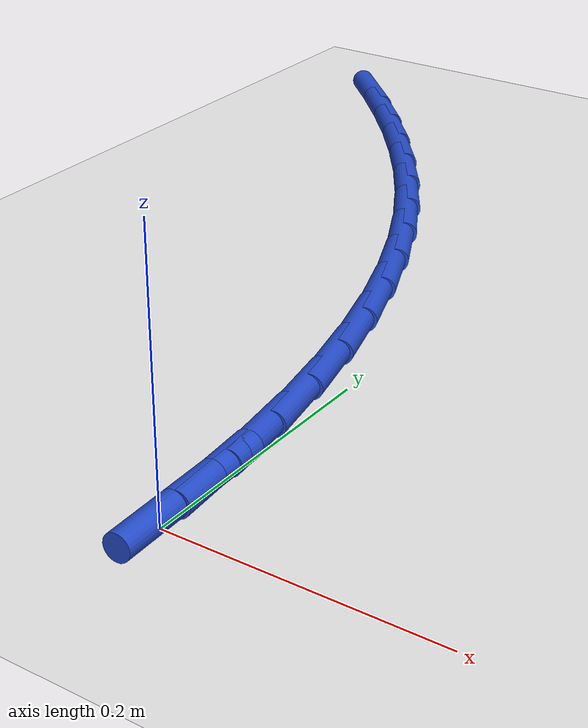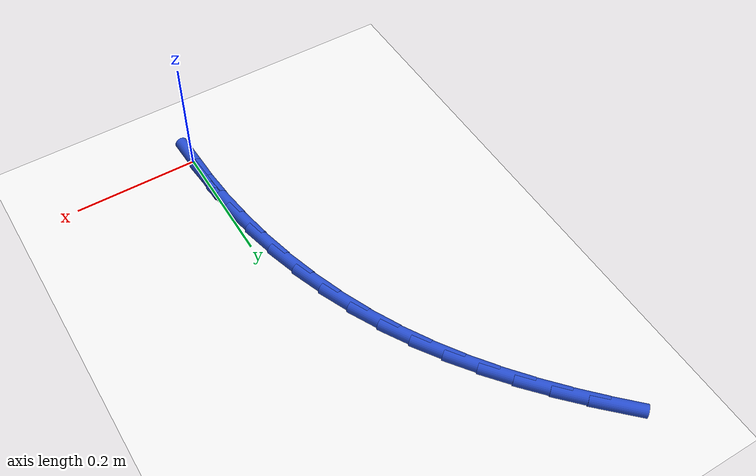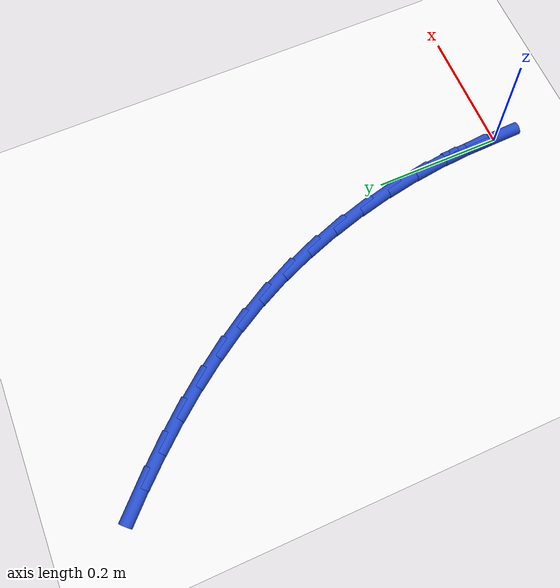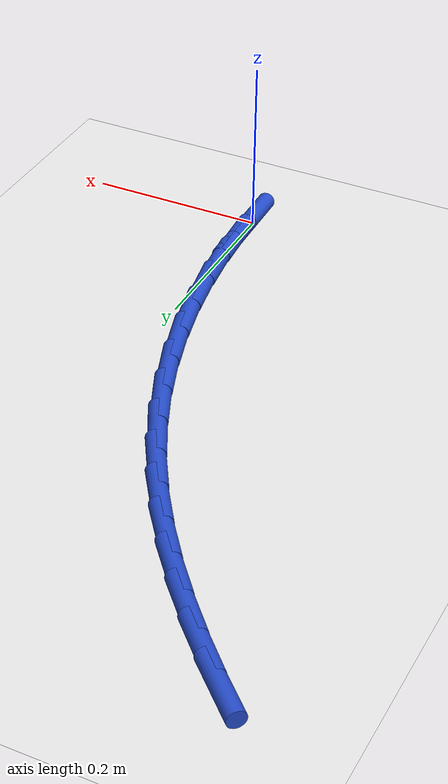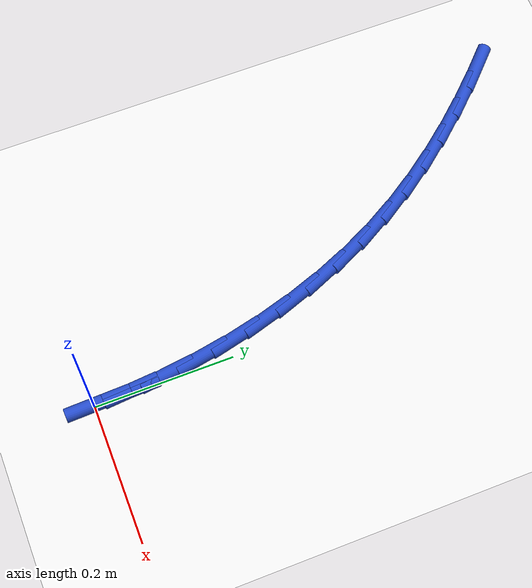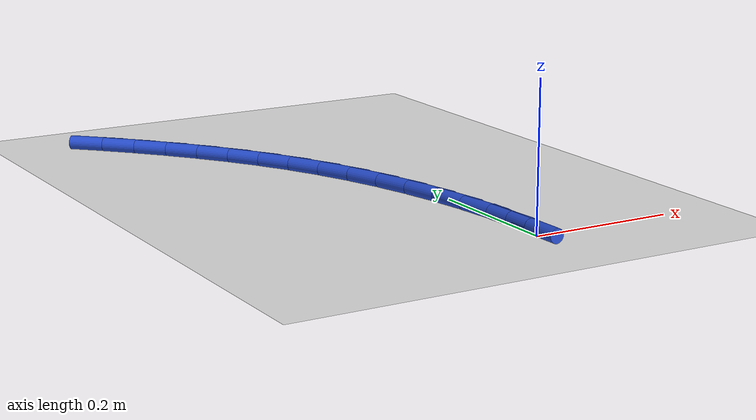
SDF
<sdf version="1.6">
 <world name="default">
  <model name="ground_plane">
   <static>1</static>
   <link name="link">
    <collision name="collision">
     <geometry><plane><normal>0 0 1</normal><size>100 100</size></plane></geometry>
     <surface><friction><ode><mu>100</mu><mu2>50</mu2></ode></friction></surface>
    </collision>
    <visual name="visual">
     <cast_shadows>0</cast_shadows>
     <geometry><plane><normal>0 0 1</normal><size>100 100</size></plane></geometry>
     <material>
      <script><uri>file://media/materials/scripts/gazebo.material</uri><name>Gazebo/WhiteGlow</name></script>
     </material>
    </visual>
   </link>
  </model>
  <model name="line">
   <link name="link_1">
    <pose>-0.0015022339804778787 0.053447836536004205 0.01 0 1.57 -1.4918860255658026</pose>
    <collision name="collision">
     <geometry><cylinder><radius>0.01</radius><length>0.08</length></cylinder></geometry>
    </collision>
    <visual name="visual">
     <material>
      <script><name>Gazebo/Blue</name><uri>file://media/materials/scripts/gazebo.material</uri></script>
     </material>
     <geometry><cylinder><radius>0.01</radius><length>0.08</length></cylinder></geometry>
    </visual>
   </link>
   <link name="link_2">
    <pose>-0.005718462823511615 0.10676754116044428 0.01 0 1.57 -1.4407691615304024</pose>
    <collision name="collision">
     <geometry><cylinder><radius>0.01</radius><length>0.08</length></cylinder></geometry>
    </collision>
    <visual name="visual">
     <material>
      <script><name>Gazebo/Blue</name><uri>file://media/materials/scripts/gazebo.material</uri></script>
     </material>
     <geometry><cylinder><radius>0.01</radius><length>0.08</length></cylinder></geometry>
    </visual>
   </link>
   <link name="link_3">
    <pose>-0.012642421567694281 0.1597171952297842 0.01 0 1.57 -1.3889186938753042</pose>
    <collision name="collision">
     <geometry><cylinder><radius>0.01</radius><length>0.08</length></cylinder></geometry>
    </collision>
    <visual name="visual">
     <material>
      <script><name>Gazebo/Blue</name><uri>file://media/materials/scripts/gazebo.material</uri></script>
     </material>
     <geometry><cylinder><radius>0.01</radius><length>0.08</length></cylinder></geometry>
    </visual>
   </link>
   <link name="link_4">
    <pose>-0.02226784525161897 0.21205488010048779 0.01 0 1.57 -1.335903203767169</pose>
    <collision name="collision">
     <geometry><cylinder><radius>0.01</radius><length>0.08</length></cylinder></geometry>
    </collision>
    <visual name="visual">
     <material>
      <script><name>Gazebo/Blue</name><uri>file://media/materials/scripts/gazebo.material</uri></script>
     </material>
     <geometry><cylinder><radius>0.01</radius><length>0.08</length></cylinder></geometry>
    </visual>
   </link>
   <link name="link_5">
    <pose>-0.03458846891387879 0.2635386771290194 0.01 0 1.57 -1.2812859101356902</pose>
    <collision name="collision">
     <geometry><cylinder><radius>0.01</radius><length>0.08</length></cylinder></geometry>
    </collision>
    <visual name="visual">
     <material>
      <script><name>Gazebo/Blue</name><uri>file://media/materials/scripts/gazebo.material</uri></script>
     </material>
     <geometry><cylinder><radius>0.01</radius><length>0.08</length></cylinder></geometry>
    </visual>
   </link>
   <link name="link_6">
    <pose>-0.049598027593066835 0.3139266676718427 0.01 0 1.57 -1.2246248402349118</pose>
    <collision name="collision">
     <geometry><cylinder><radius>0.01</radius><length>0.08</length></cylinder></geometry>
    </collision>
    <visual name="visual">
     <material>
      <script><name>Gazebo/Blue</name><uri>file://media/materials/scripts/gazebo.material</uri></script>
     </material>
     <geometry><cylinder><radius>0.01</radius><length>0.08</length></cylinder></geometry>
    </visual>
   </link>
   <link name="link_7">
    <pose>-0.06729025632777619 0.36297693308542167 0.01 0 1.57 -1.1654760408640223</pose>
    <collision name="collision">
     <geometry><cylinder><radius>0.01</radius><length>0.08</length></cylinder></geometry>
    </collision>
    <visual name="visual">
     <material>
      <script><name>Gazebo/Blue</name><uri>file://media/materials/scripts/gazebo.material</uri></script>
     </material>
     <geometry><cylinder><radius>0.01</radius><length>0.08</length></cylinder></geometry>
    </visual>
   </link>
   <link name="link_8">
    <pose>-0.08765889015659996 0.4104475547262205 0.01 0 1.57 -1.1035345253752182</pose>
    <collision name="collision">
     <geometry><cylinder><radius>0.01</radius><length>0.08</length></cylinder></geometry>
    </collision>
    <visual name="visual">
     <material>
      <script><name>Gazebo/Blue</name><uri>file://media/materials/scripts/gazebo.material</uri></script>
     </material>
     <geometry><cylinder><radius>0.01</radius><length>0.08</length></cylinder></geometry>
    </visual>
   </link>
   <link name="link_9">
    <pose>-0.11069406333752672 0.45610461890982995 0.01 0 1.57 -1.0417806762022839</pose>
    <collision name="collision">
     <geometry><cylinder><radius>0.01</radius><length>0.08</length></cylinder></geometry>
    </collision>
    <visual name="visual">
     <material>
      <script><name>Gazebo/Blue</name><uri>file://media/materials/scripts/gazebo.material</uri></script>
     </material>
     <geometry><cylinder><radius>0.01</radius><length>0.08</length></cylinder></geometry>
    </visual>
   </link>
   <link name="link_10">
    <pose>-0.13629986348260908 0.49990550377418974 0.01 0 1.57 -0.9839841862624333</pose>
    <collision name="collision">
     <geometry><cylinder><radius>0.01</radius><length>0.08</length></cylinder></geometry>
    </collision>
    <visual name="visual">
     <material>
      <script><name>Gazebo/Blue</name><uri>file://media/materials/scripts/gazebo.material</uri></script>
     </material>
     <geometry><cylinder><radius>0.01</radius><length>0.08</length></cylinder></geometry>
    </visual>
   </link>
   <link name="link_11">
    <pose>-0.16429249867418458 0.542002953995977 0.01 0 1.57 -0.930854958626746</pose>
    <collision name="collision">
     <geometry><cylinder><radius>0.01</radius><length>0.08</length></cylinder></geometry>
    </collision>
    <visual name="visual">
     <material>
      <script><name>Gazebo/Blue</name><uri>file://media/materials/scripts/gazebo.material</uri></script>
     </material>
     <geometry><cylinder><radius>0.01</radius><length>0.08</length></cylinder></geometry>
    </visual>
   </link>
   <link name="link_12">
    <pose>-0.19448420958617776 0.5825585342677677 0.01 0 1.57 -0.8827694725404054</pose>
    <collision name="collision">
     <geometry><cylinder><radius>0.01</radius><length>0.08</length></cylinder></geometry>
    </collision>
    <visual name="visual">
     <material>
      <script><name>Gazebo/Blue</name><uri>file://media/materials/scripts/gazebo.material</uri></script>
     </material>
     <geometry><cylinder><radius>0.01</radius><length>0.08</length></cylinder></geometry>
    </visual>
   </link>
   <link name="link_13">
    <pose>-0.22668723689251352 0.621733809282139 0.01 0 1.57 -0.8399394570988964</pose>
    <collision name="collision">
     <geometry><cylinder><radius>0.01</radius><length>0.08</length></cylinder></geometry>
    </collision>
    <visual name="visual">
     <material>
      <script><name>Gazebo/Blue</name><uri>file://media/materials/scripts/gazebo.material</uri></script>
     </material>
     <geometry><cylinder><radius>0.01</radius><length>0.08</length></cylinder></geometry>
    </visual>
   </link>
   <link name="link_14">
    <pose>-0.26071382126711634 0.6596903437316667 0.01 0 1.57 -0.8024437392678919</pose>
    <collision name="collision">
     <geometry><cylinder><radius>0.01</radius><length>0.08</length></cylinder></geometry>
    </collision>
    <visual name="visual">
     <material>
      <script><name>Gazebo/Blue</name><uri>file://media/materials/scripts/gazebo.material</uri></script>
     </material>
     <geometry><cylinder><radius>0.01</radius><length>0.08</length></cylinder></geometry>
    </visual>
   </link>
   <link name="link_15">
    <pose>-0.2963762033839112 0.6965897023089275 0.01 0 1.57 -0.7702630854326</pose>
    <collision name="collision">
     <geometry><cylinder><radius>0.01</radius><length>0.08</length></cylinder></geometry>
    </collision>
    <visual name="visual">
     <material>
      <script><name>Gazebo/Blue</name><uri>file://media/materials/scripts/gazebo.material</uri></script>
     </material>
     <geometry><cylinder><radius>0.01</radius><length>0.08</length></cylinder></geometry>
    </visual>
   </link>
   <link name="link_140">
    <pose>2.2551405187698492e-17 1.5265566588595902e-16 0.01 0 1.57 -1.5427390960010032</pose>
    <collision name="collision">
     <geometry><cylinder><radius>0.01</radius><length>0.08</length></cylinder></geometry>
    </collision>
    <visual name="visual">
     <material>
      <script><name>Gazebo/Blue</name><uri>file://media/materials/scripts/gazebo.material</uri></script>
     </material>
     <geometry><cylinder><radius>0.01</radius><length>0.08</length></cylinder></geometry>
    </visual>
   </link>
   <link name="link_141">
    <pose>-0.001500367242592112 0.05346121049801062 0.01 0 1.57 -1.5427390960010037</pose>
    <collision name="collision">
     <geometry><cylinder><radius>0.01</radius><length>0.08</length></cylinder></geometry>
    </collision>
    <visual name="visual">
     <material>
      <script><name>Gazebo/Blue</name><uri>file://media/materials/scripts/gazebo.material</uri></script>
     </material>
     <geometry><cylinder><radius>0.01</radius><length>0.08</length></cylinder></geometry>
    </visual>
   </link>
  </model>
 </world>
</sdf>
